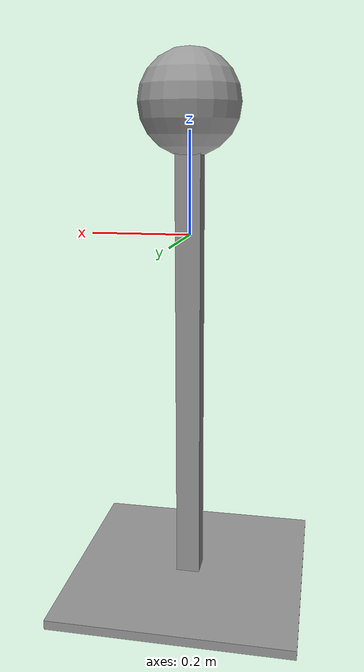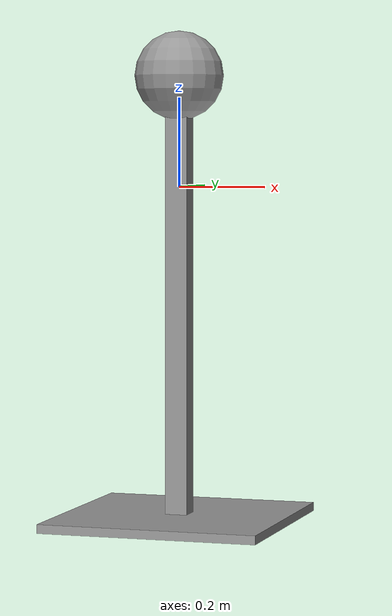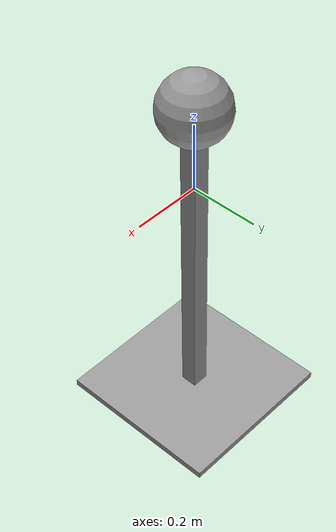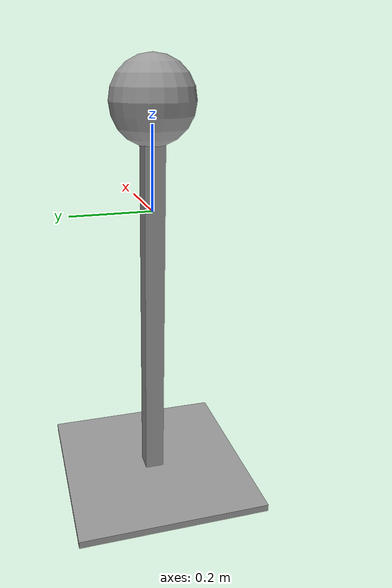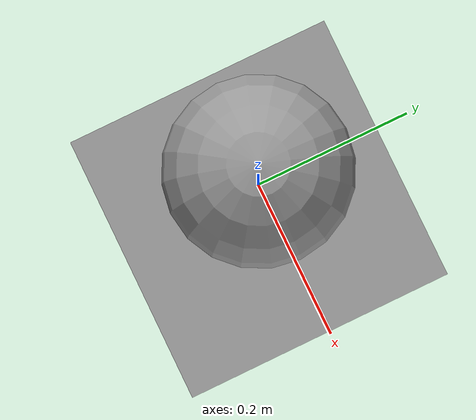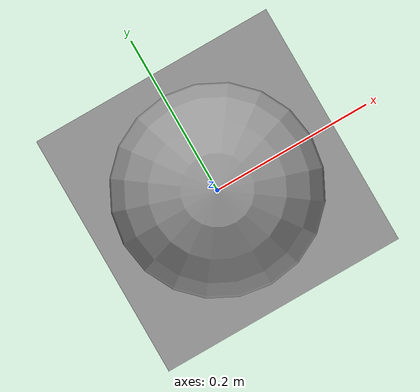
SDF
<?xml version='1.0'?>
<sdf version='1.7'>
  <model name='waypoint'>
    <link name='rod'>
      <inertial>
        <mass>1</mass>
        <inertia>
          <ixx>0.166667</ixx>
          <ixy>0</ixy>
          <ixz>0</ixz>
          <iyy>0.166667</iyy>
          <iyz>0</iyz>
          <izz>0.166667</izz>
        </inertia>
        <pose>0 0 0 0 -0 0</pose>
      </inertial>
      <pose>0 0 -0.25 0 -0 0</pose>
      <gravity>1</gravity>
      <self_collide>0</self_collide>
      <kinematic>0</kinematic>
      <enable_wind>0</enable_wind>
      <visual name='visual'>
        <pose>0 0 0 0 -0 0</pose>
        <geometry>
          <box>
            <size>0.05 0.05 1</size>
          </box>
        </geometry>
        <material>
          <lighting>1</lighting>
          <script>
            <uri>file://media/materials/scripts/gazebo.material</uri>
            <name>Gazebo/Grey</name>
          </script>
          <shader type='pixel'>
            <normal_map>__default__</normal_map>
          </shader>
          <ambient>0.3 0.3 0.3 1</ambient>
          <diffuse>0.7 0.7 0.7 1</diffuse>
          <specular>0.01 0.01 0.01 1</specular>
          <emissive>0 0 0 1</emissive>
        </material>
        <transparency>0</transparency>
        <cast_shadows>1</cast_shadows>
      </visual>
      <collision name='collision'>
        <laser_retro>0</laser_retro>
        <max_contacts>10</max_contacts>
        <pose>0 0 0 0 -0 0</pose>
        <geometry>
          <box>
            <size>0.05 0.05 1</size>
          </box>
        </geometry>
        <surface>
          <friction>
            <ode>
              <mu>1</mu>
              <mu2>1</mu2>
              <fdir1>0 0 0</fdir1>
              <slip1>0</slip1>
              <slip2>0</slip2>
            </ode>
            <torsional>
              <coefficient>1</coefficient>
              <patch_radius>0</patch_radius>
              <surface_radius>0</surface_radius>
              <use_patch_radius>1</use_patch_radius>
              <ode>
                <slip>0</slip>
              </ode>
            </torsional>
          </friction>
          <bounce>
            <restitution_coefficient>0</restitution_coefficient>
            <threshold>1e+06</threshold>
          </bounce>
          <contact>
            <collide_without_contact>0</collide_without_contact>
            <collide_without_contact_bitmask>1</collide_without_contact_bitmask>
            <collide_bitmask>1</collide_bitmask>
            <ode>
              <soft_cfm>0</soft_cfm>
              <soft_erp>0.2</soft_erp>
              <kp>1e+13</kp>
              <kd>1</kd>
              <max_vel>0.01</max_vel>
              <min_depth>0</min_depth>
            </ode>
            <bullet>
              <split_impulse>1</split_impulse>
              <split_impulse_penetration_threshold>-0.01</split_impulse_penetration_threshold>
              <soft_cfm>0</soft_cfm>
              <soft_erp>0.2</soft_erp>
              <kp>1e+13</kp>
              <kd>1</kd>
            </bullet>
          </contact>
        </surface>
      </collision>
    </link>
    <link name='sphere'>
      <inertial>
        <mass>1</mass>
        <inertia>
          <ixx>0.1</ixx>
          <ixy>0</ixy>
          <ixz>0</ixz>
          <iyy>0.1</iyy>
          <iyz>0</iyz>
          <izz>0.1</izz>
        </inertia>
        <pose>0 0 0 0 -0 0</pose>
      </inertial>
      <pose>0 0 0.25 0 -0 0</pose>
      <gravity>1</gravity>
      <self_collide>0</self_collide>
      <kinematic>0</kinematic>
      <enable_wind>0</enable_wind>
      <visual name='visual'>
        <pose>0 0 0 0 -0 0</pose>
        <geometry>
          <sphere>
            <radius>0.1</radius>
          </sphere>
        </geometry>
        <material>
          <lighting>1</lighting>
          <script>
            <uri>file://media/materials/scripts/gazebo.material</uri>
            <name>Gazebo/Grey</name>
          </script>
          <shader type='pixel'>
            <normal_map>__default__</normal_map>
          </shader>
          <ambient>0.3 0.3 0.3 1</ambient>
          <diffuse>0.7 0.7 0.7 1</diffuse>
          <specular>0.01 0.01 0.01 1</specular>
          <emissive>0 0 0 1</emissive>
        </material>
        <transparency>0</transparency>
        <cast_shadows>1</cast_shadows>
      </visual>
      <sensor name="navsat" type="navsat">
        <always_on>1</always_on>
        <update_rate>1</update_rate>
        <topic>waypoint/navsat</topic>
      </sensor>
      <collision name='collision'>
        <laser_retro>0</laser_retro>
        <max_contacts>10</max_contacts>
        <pose>0 0 0 0 -0 0</pose>
        <geometry>
          <sphere>
            <radius>0.1</radius>
          </sphere>
        </geometry>
        <surface>
          <friction>
            <ode>
              <mu>1</mu>
              <mu2>1</mu2>
              <fdir1>0 0 0</fdir1>
              <slip1>0</slip1>
              <slip2>0</slip2>
            </ode>
            <torsional>
              <coefficient>1</coefficient>
              <patch_radius>0</patch_radius>
              <surface_radius>0</surface_radius>
              <use_patch_radius>1</use_patch_radius>
              <ode>
                <slip>0</slip>
              </ode>
            </torsional>
          </friction>
          <bounce>
            <restitution_coefficient>0</restitution_coefficient>
            <threshold>1e+06</threshold>
          </bounce>
          <contact>
            <collide_without_contact>0</collide_without_contact>
            <collide_without_contact_bitmask>1</collide_without_contact_bitmask>
            <collide_bitmask>1</collide_bitmask>
            <ode>
              <soft_cfm>0</soft_cfm>
              <soft_erp>0.2</soft_erp>
              <kp>1e+13</kp>
              <kd>1</kd>
              <max_vel>0.01</max_vel>
              <min_depth>0</min_depth>
            </ode>
            <bullet>
              <split_impulse>1</split_impulse>
              <split_impulse_penetration_threshold>-0.01</split_impulse_penetration_threshold>
              <soft_cfm>0</soft_cfm>
              <soft_erp>0.2</soft_erp>
              <kp>1e+13</kp>
              <kd>1</kd>
            </bullet>
          </contact>
        </surface>
      </collision>
    </link>
    <link name='base'>
      <inertial>
        <mass>1</mass>
        <inertia>
          <ixx>0.166667</ixx>
          <ixy>0</ixy>
          <ixz>0</ixz>
          <iyy>0.166667</iyy>
          <iyz>0</iyz>
          <izz>0.166667</izz>
        </inertia>
        <pose>0 0 0 0 -0 0</pose>
      </inertial>
      <pose>0 0 -0.75 0 -0 0</pose>
      <gravity>1</gravity>
      <self_collide>0</self_collide>
      <kinematic>0</kinematic>
      <enable_wind>0</enable_wind>
      <visual name='visual'>
        <pose>0 0 0 0 -0 0</pose>
        <geometry>
          <box>
            <size>0.5 0.5 0.02</size>
          </box>
        </geometry>
        <material>
          <lighting>1</lighting>
          <script>
            <uri>file://media/materials/scripts/gazebo.material</uri>
            <name>Gazebo/Grey</name>
          </script>
          <shader type='pixel'>
            <normal_map>__default__</normal_map>
          </shader>
          <ambient>0.3 0.3 0.3 1</ambient>
          <diffuse>0.7 0.7 0.7 1</diffuse>
          <specular>0.01 0.01 0.01 1</specular>
          <emissive>0 0 0 1</emissive>
        </material>
        <transparency>0</transparency>
        <cast_shadows>1</cast_shadows>
      </visual>
      <collision name='collision'>
        <laser_retro>0</laser_retro>
        <max_contacts>10</max_contacts>
        <pose>0 0 0 0 -0 0</pose>
        <geometry>
          <box>
            <size>0.5 0.5 0.02</size>
          </box>
        </geometry>
        <surface>
          <friction>
            <ode>
              <mu>1</mu>
              <mu2>1</mu2>
              <fdir1>0 0 0</fdir1>
              <slip1>0</slip1>
              <slip2>0</slip2>
            </ode>
            <torsional>
              <coefficient>1</coefficient>
              <patch_radius>0</patch_radius>
              <surface_radius>0</surface_radius>
              <use_patch_radius>1</use_patch_radius>
              <ode>
                <slip>0</slip>
              </ode>
            </torsional>
          </friction>
          <bounce>
            <restitution_coefficient>0</restitution_coefficient>
            <threshold>1e+06</threshold>
          </bounce>
          <contact>
            <collide_without_contact>0</collide_without_contact>
            <collide_without_contact_bitmask>1</collide_without_contact_bitmask>
            <collide_bitmask>1</collide_bitmask>
            <ode>
              <soft_cfm>0</soft_cfm>
              <soft_erp>0.2</soft_erp>
              <kp>1e+13</kp>
              <kd>1</kd>
              <max_vel>0.01</max_vel>
              <min_depth>0</min_depth>
            </ode>
            <bullet>
              <split_impulse>1</split_impulse>
              <split_impulse_penetration_threshold>-0.01</split_impulse_penetration_threshold>
              <soft_cfm>0</soft_cfm>
              <soft_erp>0.2</soft_erp>
              <kp>1e+13</kp>
              <kd>1</kd>
            </bullet>
          </contact>
        </surface>
      </collision>
    </link>
    <joint name='rod_sphere_joint' type='fixed'>
      <parent>rod</parent>
      <child>sphere</child>
      <pose>0 0 0 0 -0 0</pose>
      <physics>
        <ode>
          <limit>
            <cfm>0</cfm>
            <erp>0.2</erp>
          </limit>
          <suspension>
            <cfm>0</cfm>
            <erp>0.2</erp>
          </suspension>
        </ode>
      </physics>
    </joint>
    <joint name='base_rod_joint' type='fixed'>
      <parent>base</parent>
      <child>rod</child>
      <pose>0 0 0 0 -0 0</pose>
      <physics>
        <ode>
          <limit>
            <cfm>0</cfm>
            <erp>0.2</erp>
          </limit>
          <suspension>
            <cfm>0</cfm>
            <erp>0.2</erp>
          </suspension>
        </ode>
      </physics>
    </joint>
    <static>0</static>
    <allow_auto_disable>1</allow_auto_disable>
  </model>
</sdf>
